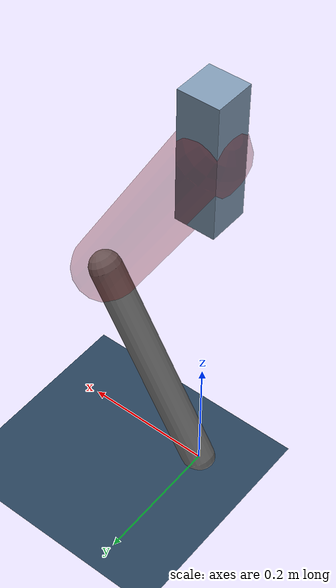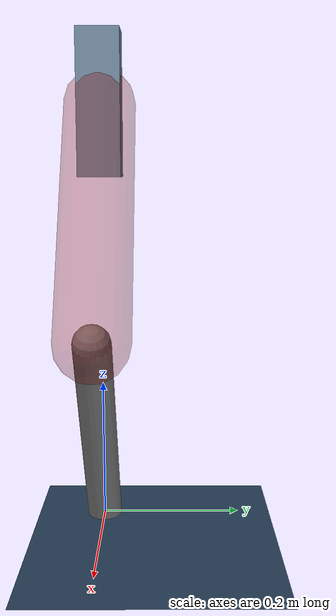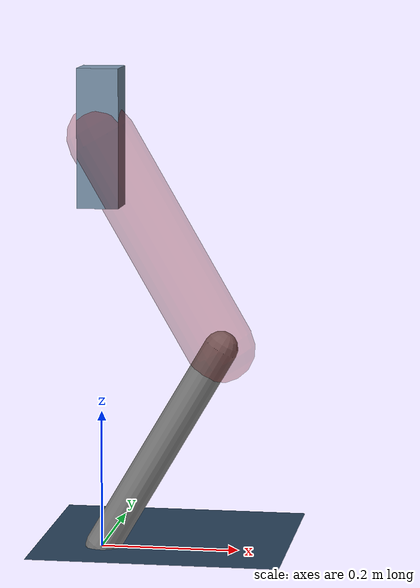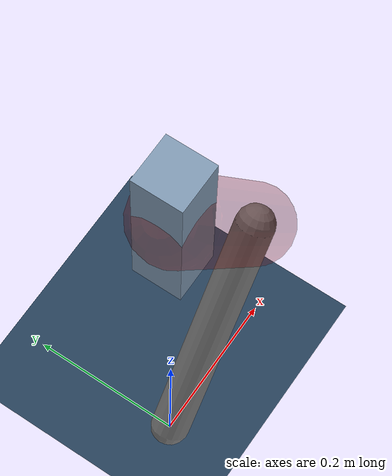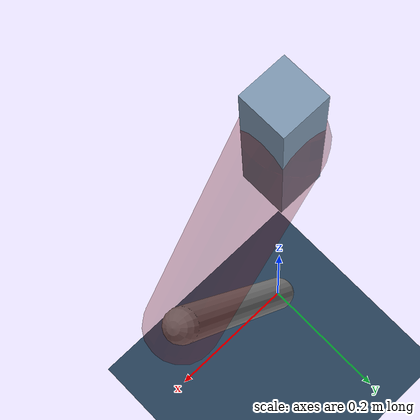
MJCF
<mujoco model="Hopper2D">
	<compiler inertiafromgeom="true" angle="radian" />
	<option timestep="0.001" integrator="implicit" cone="elliptic" solver="Newton" tolerance="1e-10" />

	<default>
		<geom contype="1" conaffinity="1" condim="3" friction="2 0.005 0.0001" solref="0.005 1" />
		<joint limited="true" damping="0.1" />
	</default>

	<asset>
		<texture name="skybox" type="skybox" builtin="gradient" rgb1=".4 .6 .8" rgb2="0 0 0" width="800" height="800" />
		<texture name="grid" type="2d" builtin="checker" rgb1=".1 .2 .3" rgb2=".2 .3 .4" width="300" height="300" mark="edge" markrgb=".2 .3 .4" />
		<material name="ground" texture="grid" texrepeat="1 1" texuniform="true" reflectance="0.1" />
		<material name="leg" rgba="0.5 0.6 0.7 1" />
	</asset>

	<worldbody>

		<geom name="floor" type="plane" size="5 5 0.25" material="ground" />

		<light directional="false" diffuse="0.8 0.8 0.8" specular="0.3 0.3 0.3" pos="0 0 2" dir="0 0 -1" />
		<light mode="targetbodycom" target="base" directional="false" diffuse="0.8 0.8 0.8" specular="0.3 0.3 0.3" pos="0 0 2" dir="0 0 -1" />

		<camera name="fixed" pos="0 -2 1" xyaxes="1 0 0 0 0 1" />
		<camera name="tracking" mode="trackcom" pos="0 -3 1" />

		<body name="root" pos="0 0 0.599969174391676">
			<joint name="slide_x" type="slide" axis="1 0 0" range="-100 100" />
			<joint name="slide_z" type="slide" axis="0 0 1" range="0 10" />

			<body name="base" pos="0 0 0">
				<geom name="torso" type="box" size="0.03 0.03 0.1" mass="2.482" material="leg" />

				<body name="link1" pos="0 0 0" euler="0 1.0474302028641154 0">
					<joint type="hinge" axis="0 -1 0" pos="0 0 0" name="hinge1" limited="true" range="-3.14 3.14" stiffness="0" damping="0.1" />
					<geom name="thigh" type="capsule" fromto="0 0 0 0.34855871403622946 0 0" size="0.05" rgba="0.5 0 0 0.3" mass="1.1226643993014425" />

					<body name="link2" pos="0.34855871403622946 0 0" euler="0 1.0522816285314145 0">
						<joint type="hinge" axis="0 -1 0" pos="0 0 0" name="hinge2" limited="true" range="-3.14 3.14" stiffness="0" damping="0.1" />
						<geom name="shank" type="capsule" fromto="0 0 0 0.3452438454116422 0 0" size="0.025" mass="0.5200950763293138" />

					</body>
				</body>
			</body>
		</body>
	</worldbody>

	<actuator>
		<motor name="torque1" joint="hinge1" ctrlrange="-104.12322810299538 104.12322810299538" ctrllimited="true" gear="1" />
		<motor name="torque2" joint="hinge2" ctrlrange="-57.33011198055487 57.33011198055487" ctrllimited="true" gear="1" />
	</actuator>
</mujoco>
